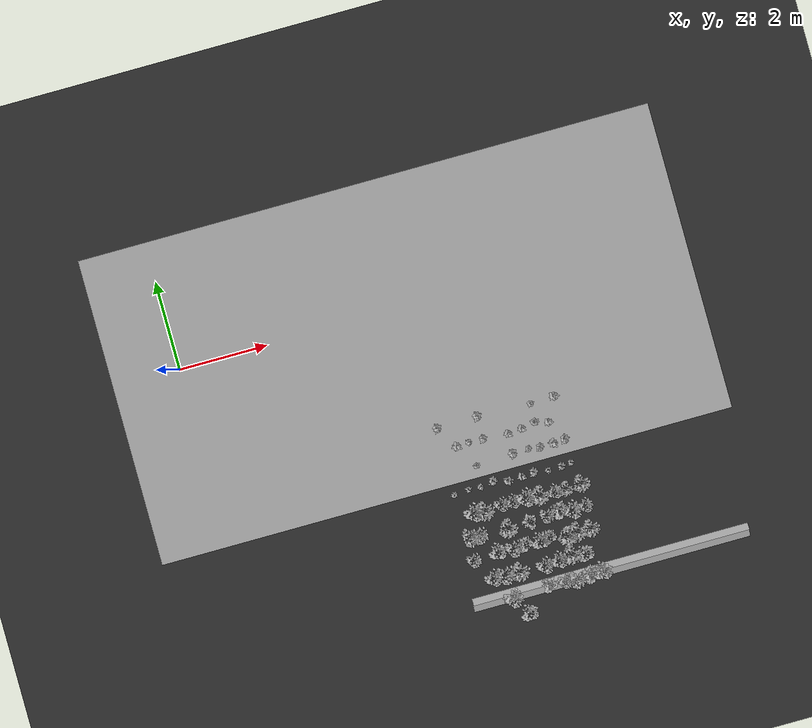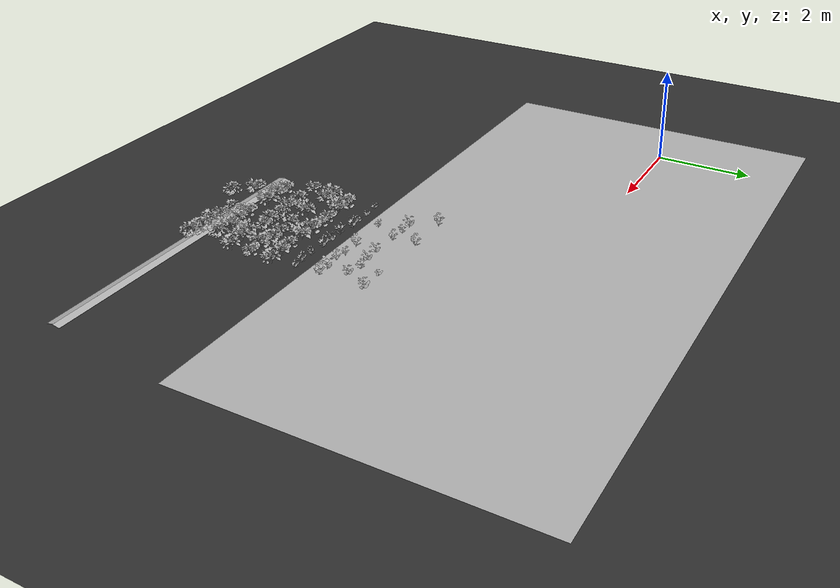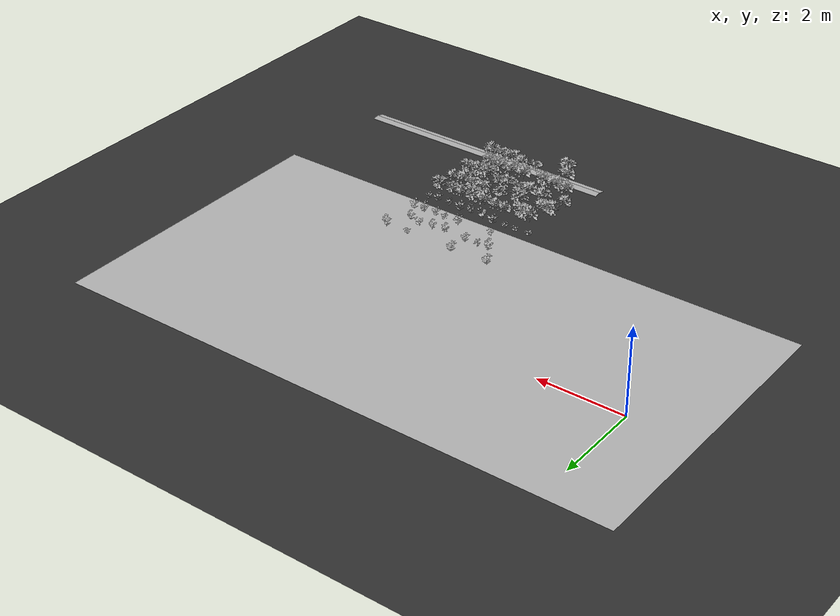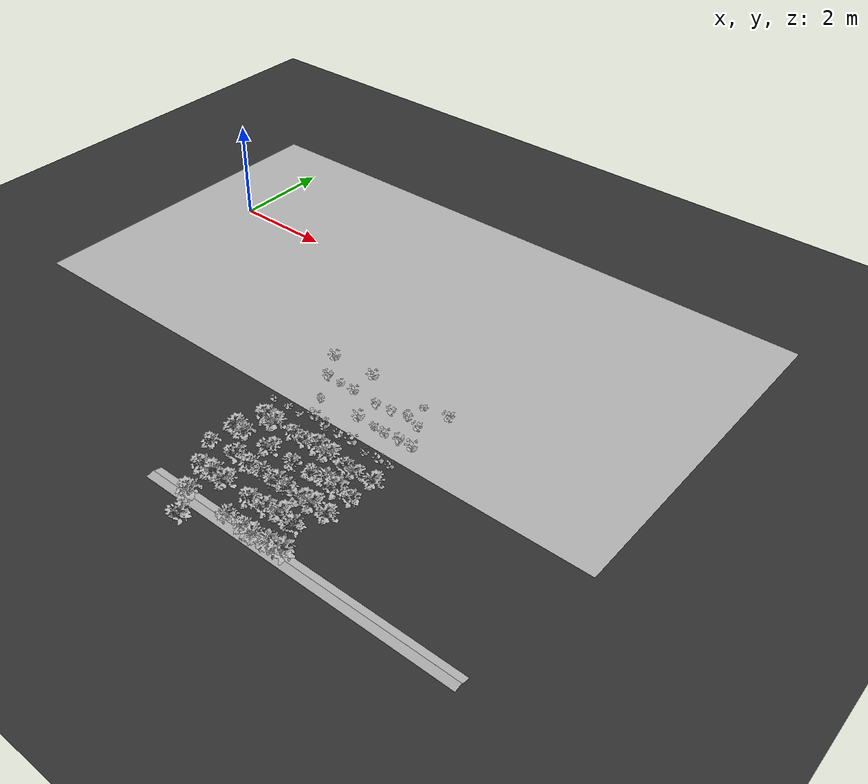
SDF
<sdf version="1.7">
 <world name="default">
  <model name="ground_plane">
   <static>1</static>
   <link name="link">
    <collision name="collision">
     <geometry><plane><normal>0 0 1</normal><size>100 100</size></plane></geometry>
     <surface>
      <contact><collide_bitmask>65535</collide_bitmask></contact>
      <friction><ode><mu>100</mu><mu2>50</mu2></ode></friction>
     </surface>
    </collision>
    <visual name="visual">
     <cast_shadows>0</cast_shadows>
     <geometry><plane><normal>0 0 1</normal><size>100 100</size></plane></geometry>
     <material>
      <ambient>0.2 0.2 0.2 1.0</ambient>
      <diffuse>0.2 0.2 0.2 1.0</diffuse>
      <specular>0.2 0.2 0.2 1.0</specular>
      <emissive>0.2 0.2 0.2 1.0</emissive>
     </material>
    </visual>
   </link>
  </model>
  <model name="ground">
   <pose>5 -0.5 0.01  3.141592654 0 0</pose>
   <static>true</static>
   <link name="body">
    <visual name="visual">
     <cast_shadows>0</cast_shadows>
     <geometry>
      <mesh><uri>file:///home/ifcosta/catkin_ws/src/cnn_line/worlds/models/ground.obj</uri></mesh>
     </geometry>
    </visual>
   </link>
  </model>
  <model name="plt_10017">
   <pose>5.09 -4.28 0.0143 0.0 0.0 -0.89188</pose>
   <static>true</static>
   <link name="body">
    <visual name="visual">
     <geometry>
      <mesh><uri>file:///home/ifcosta/catkin_ws/src/cnn_line/worlds/models/plant10.obj</uri></mesh>
     </geometry>
    </visual>
   </link>
  </model>
  <model name="plt_10018">
   <pose>5.43 -4.24 0.0139 0.0 0.0 2.3928</pose>
   <static>true</static>
   <link name="body">
    <visual name="visual">
     <geometry>
      <mesh><uri>file:///home/ifcosta/catkin_ws/src/cnn_line/worlds/models/plant10.obj</uri></mesh>
     </geometry>
    </visual>
   </link>
  </model>
  <model name="plt_10019">
   <pose>5.7 -4.26 0.0103 0.0 0.0 0.79482</pose>
   <static>true</static>
   <link name="body">
    <visual name="visual">
     <geometry>
      <mesh><uri>file:///home/ifcosta/catkin_ws/src/cnn_line/worlds/models/plant10.obj</uri></mesh>
     </geometry>
    </visual>
   </link>
  </model>
  <model name="plt_10020">
   <pose>5.99 -4.2 0.0155 0.0 0.0 -0.5302</pose>
   <static>true</static>
   <link name="body">
    <visual name="visual">
     <geometry>
      <mesh><uri>file:///home/ifcosta/catkin_ws/src/cnn_line/worlds/models/plant13.obj</uri></mesh>
     </geometry>
    </visual>
   </link>
  </model>
  <model name="plt_20020">
   <pose>5.99 -7.2 0.0155 0.0 0.0 0.67923</pose>
   <static>true</static>
   <link name="body">
    <visual name="visual">
     <geometry>
      <mesh><uri>file:///home/ifcosta/catkin_ws/src/cnn_line/worlds/models/plant21.obj</uri></mesh>
     </geometry>
    </visual>
   </link>
  </model>
  <model name="plt_10021">
   <pose>6.31 -4.28 0.0148 0.0 0.0 -1.7333</pose>
   <static>true</static>
   <link name="body">
    <visual name="visual">
     <geometry>
      <mesh><uri>file:///home/ifcosta/catkin_ws/src/cnn_line/worlds/models/plant13.obj</uri></mesh>
     </geometry>
    </visual>
   </link>
  </model>
  <model name="plt_10022">
   <pose>6.63 -4.27 0.0137 0.0 0.0 1.5613</pose>
   <static>true</static>
   <link name="body">
    <visual name="visual">
     <geometry>
      <mesh><uri>file:///home/ifcosta/catkin_ws/src/cnn_line/worlds/models/plant12.obj</uri></mesh>
     </geometry>
    </visual>
   </link>
  </model>
  <model name="plt_10023">
   <pose>6.9 -4.25 0.0141 0.0 0.0 -0.33479</pose>
   <static>true</static>
   <link name="body">
    <visual name="visual">
     <geometry>
      <mesh><uri>file:///home/ifcosta/catkin_ws/src/cnn_line/worlds/models/plant13.obj</uri></mesh>
     </geometry>
    </visual>
   </link>
  </model>
  <model name="plt_10024">
   <pose>7.23 -4.3 0.0149 0.0 0.0 0.36856</pose>
   <static>true</static>
   <link name="body">
    <visual name="visual">
     <geometry>
      <mesh><uri>file:///home/ifcosta/catkin_ws/src/cnn_line/worlds/models/plant11.obj</uri></mesh>
     </geometry>
    </visual>
   </link>
  </model>
  <model name="plt_10025">
   <pose>7.53 -4.29 0.0139 0.0 0.0 -0.26293</pose>
   <static>true</static>
   <link name="body">
    <visual name="visual">
     <geometry>
      <mesh><uri>file:///home/ifcosta/catkin_ws/src/cnn_line/worlds/models/plant12.obj</uri></mesh>
     </geometry>
    </visual>
   </link>
  </model>
  <model name="plt_10026">
   <pose>7.75 -4.27 0.0156 0.0 0.0 -0.21337</pose>
   <static>true</static>
   <link name="body">
    <visual name="visual">
     <geometry>
      <mesh><uri>file:///home/ifcosta/catkin_ws/src/cnn_line/worlds/models/plant11.obj</uri></mesh>
     </geometry>
    </visual>
   </link>
  </model>
  <model name="plt_10053">
   <pose>5.73 -3.78 0.0159 0.0 0.0 -1.3011</pose>
   <static>true</static>
   <link name="body">
    <visual name="visual">
     <geometry>
      <mesh><uri>file:///home/ifcosta/catkin_ws/src/cnn_line/worlds/models/plant11.obj</uri></mesh>
     </geometry>
    </visual>
   </link>
  </model>
  <model name="plt_20053">
   <pose>5.73 -6.78 0.0159 0.0 0.0 0.48432</pose>
   <static>true</static>
   <link name="body">
    <visual name="visual">
     <geometry>
      <mesh><uri>file:///home/ifcosta/catkin_ws/src/cnn_line/worlds/models/plant22.obj</uri></mesh>
     </geometry>
    </visual>
   </link>
  </model>
  <model name="plt_10056">
   <pose>6.57 -3.73 0.0154 0.0 0.0 0.26239</pose>
   <static>true</static>
   <link name="body">
    <visual name="visual">
     <geometry>
      <mesh><uri>file:///home/ifcosta/catkin_ws/src/cnn_line/worlds/models/plant13.obj</uri></mesh>
     </geometry>
    </visual>
   </link>
  </model>
  <model name="plt_20056">
   <pose>6.57 -6.73 0.0154 0.0 0.0 0.36241</pose>
   <static>true</static>
   <link name="body">
    <visual name="visual">
     <geometry>
      <mesh><uri>file:///home/ifcosta/catkin_ws/src/cnn_line/worlds/models/plant20.obj</uri></mesh>
     </geometry>
    </visual>
   </link>
  </model>
  <model name="plt_10057">
   <pose>6.93 -3.73 0.0172 0.0 0.0 -0.51425</pose>
   <static>true</static>
   <link name="body">
    <visual name="visual">
     <geometry>
      <mesh><uri>file:///home/ifcosta/catkin_ws/src/cnn_line/worlds/models/plant11.obj</uri></mesh>
     </geometry>
    </visual>
   </link>
  </model>
  <model name="plt_20057">
   <pose>6.93 -6.73 0.0172 0.0 0.0 -1.0857</pose>
   <static>true</static>
   <link name="body">
    <visual name="visual">
     <geometry>
      <mesh><uri>file:///home/ifcosta/catkin_ws/src/cnn_line/worlds/models/plant20.obj</uri></mesh>
     </geometry>
    </visual>
   </link>
  </model>
  <model name="plt_10058">
   <pose>7.18 -3.76 0.0165 0.0 0.0 -0.46316</pose>
   <static>true</static>
   <link name="body">
    <visual name="visual">
     <geometry>
      <mesh><uri>file:///home/ifcosta/catkin_ws/src/cnn_line/worlds/models/plant12.obj</uri></mesh>
     </geometry>
    </visual>
   </link>
  </model>
  <model name="plt_20058">
   <pose>7.18 -6.76 0.0165 0.0 0.0 -0.75378</pose>
   <static>true</static>
   <link name="body">
    <visual name="visual">
     <geometry>
      <mesh><uri>file:///home/ifcosta/catkin_ws/src/cnn_line/worlds/models/plant21.obj</uri></mesh>
     </geometry>
    </visual>
   </link>
  </model>
  <model name="plt_10059">
   <pose>7.49 -3.74 0.0131 0.0 0.0 1.0852</pose>
   <static>true</static>
   <link name="body">
    <visual name="visual">
     <geometry>
      <mesh><uri>file:///home/ifcosta/catkin_ws/src/cnn_line/worlds/models/plant13.obj</uri></mesh>
     </geometry>
    </visual>
   </link>
  </model>
  <model name="plt_20059">
   <pose>7.49 -6.74 0.0131 0.0 0.0 1.5801</pose>
   <static>true</static>
   <link name="body">
    <visual name="visual">
     <geometry>
      <mesh><uri>file:///home/ifcosta/catkin_ws/src/cnn_line/worlds/models/plant21.obj</uri></mesh>
     </geometry>
    </visual>
   </link>
  </model>
  <model name="plt_10060">
   <pose>7.75 -3.73 0.013 0.0 0.0 -0.28267</pose>
   <static>true</static>
   <link name="body">
    <visual name="visual">
     <geometry>
      <mesh><uri>file:///home/ifcosta/catkin_ws/src/cnn_line/worlds/models/plant13.obj</uri></mesh>
     </geometry>
    </visual>
   </link>
  </model>
  <model name="plt_20060">
   <pose>7.75 -6.73 0.013 0.0 0.0 1.0998</pose>
   <static>true</static>
   <link name="body">
    <visual name="visual">
     <geometry>
      <mesh><uri>file:///home/ifcosta/catkin_ws/src/cnn_line/worlds/models/plant22.obj</uri></mesh>
     </geometry>
    </visual>
   </link>
  </model>
  <model name="slope_868">
   <pose>8.0 -6.75 -0.005 0.0 0.0 0.0</pose>
   <static>true</static>
   <link name="body">
    <visual name="visual">
     <geometry>
      <mesh><uri>file:///home/ifcosta/catkin_ws/src/cnn_line/worlds/models/slope.obj</uri></mesh>
     </geometry>
    </visual>
   </link>
  </model>
  <model name="slope_968">
   <pose>8.0 -6.75 -0.005 0.0 0.0 3.1416</pose>
   <static>true</static>
   <link name="body">
    <visual name="visual">
     <geometry>
      <mesh><uri>file:///home/ifcosta/catkin_ws/src/cnn_line/worlds/models/slope.obj</uri></mesh>
     </geometry>
    </visual>
   </link>
  </model>
  <model name="plt_10086">
   <pose>5.43 -3.25 0.0145 0.0 0.0 1.4373</pose>
   <static>true</static>
   <link name="body">
    <visual name="visual">
     <geometry>
      <mesh><uri>file:///home/ifcosta/catkin_ws/src/cnn_line/worlds/models/plant13.obj</uri></mesh>
     </geometry>
    </visual>
   </link>
  </model>
  <model name="plt_20086">
   <pose>5.43 -6.25 0.0145 0.0 0.0 0.081571</pose>
   <static>true</static>
   <link name="body">
    <visual name="visual">
     <geometry>
      <mesh><uri>file:///home/ifcosta/catkin_ws/src/cnn_line/worlds/models/plant21.obj</uri></mesh>
     </geometry>
    </visual>
   </link>
  </model>
  <model name="plt_10087">
   <pose>5.71 -3.24 0.0154 0.0 0.0 0.52621</pose>
   <static>true</static>
   <link name="body">
    <visual name="visual">
     <geometry>
      <mesh><uri>file:///home/ifcosta/catkin_ws/src/cnn_line/worlds/models/plant11.obj</uri></mesh>
     </geometry>
    </visual>
   </link>
  </model>
  <model name="plt_20087">
   <pose>5.71 -6.24 0.0154 0.0 0.0 0.16457</pose>
   <static>true</static>
   <link name="body">
    <visual name="visual">
     <geometry>
      <mesh><uri>file:///home/ifcosta/catkin_ws/src/cnn_line/worlds/models/plant22.obj</uri></mesh>
     </geometry>
    </visual>
   </link>
  </model>
  <model name="plt_10088">
   <pose>6.03 -3.25 0.0131 0.0 0.0 -0.16407</pose>
   <static>true</static>
   <link name="body">
    <visual name="visual">
     <geometry>
      <mesh><uri>file:///home/ifcosta/catkin_ws/src/cnn_line/worlds/models/plant12.obj</uri></mesh>
     </geometry>
    </visual>
   </link>
  </model>
  <model name="plt_20088">
   <pose>6.03 -6.25 0.0131 0.0 0.0 -0.51164</pose>
   <static>true</static>
   <link name="body">
    <visual name="visual">
     <geometry>
      <mesh><uri>file:///home/ifcosta/catkin_ws/src/cnn_line/worlds/models/plant22.obj</uri></mesh>
     </geometry>
    </visual>
   </link>
  </model>
  <model name="plt_10090">
   <pose>6.59 -3.28 0.0144 0.0 0.0 1.3888</pose>
   <static>true</static>
   <link name="body">
    <visual name="visual">
     <geometry>
      <mesh><uri>file:///home/ifcosta/catkin_ws/src/cnn_line/worlds/models/plant12.obj</uri></mesh>
     </geometry>
    </visual>
   </link>
  </model>
  <model name="plt_20090">
   <pose>6.59 -6.28 0.0144 0.0 0.0 -0.049474</pose>
   <static>true</static>
   <link name="body">
    <visual name="visual">
     <geometry>
      <mesh><uri>file:///home/ifcosta/catkin_ws/src/cnn_line/worlds/models/plant21.obj</uri></mesh>
     </geometry>
    </visual>
   </link>
  </model>
  <model name="plt_10091">
   <pose>6.91 -3.25 0.0156 0.0 0.0 1.4749</pose>
   <static>true</static>
   <link name="body">
    <visual name="visual">
     <geometry>
      <mesh><uri>file:///home/ifcosta/catkin_ws/src/cnn_line/worlds/models/plant12.obj</uri></mesh>
     </geometry>
    </visual>
   </link>
  </model>
  <model name="plt_20091">
   <pose>6.91 -6.25 0.0156 0.0 0.0 0.26164</pose>
   <static>true</static>
   <link name="body">
    <visual name="visual">
     <geometry>
      <mesh><uri>file:///home/ifcosta/catkin_ws/src/cnn_line/worlds/models/plant21.obj</uri></mesh>
     </geometry>
    </visual>
   </link>
  </model>
  <model name="plt_10092">
   <pose>7.21 -3.19 0.0153 0.0 0.0 -1.3932</pose>
   <static>true</static>
   <link name="body">
    <visual name="visual">
     <geometry>
      <mesh><uri>file:///home/ifcosta/catkin_ws/src/cnn_line/worlds/models/plant12.obj</uri></mesh>
     </geometry>
    </visual>
   </link>
  </model>
  <model name="plt_20092">
   <pose>7.21 -6.19 0.0153 0.0 0.0 -0.70961</pose>
   <static>true</static>
   <link name="body">
    <visual name="visual">
     <geometry>
      <mesh><uri>file:///home/ifcosta/catkin_ws/src/cnn_line/worlds/models/plant22.obj</uri></mesh>
     </geometry>
    </visual>
   </link>
  </model>
  <model name="plt_10093">
   <pose>7.51 -3.27 0.0173 0.0 0.0 1.8168</pose>
   <static>true</static>
   <link name="body">
    <visual name="visual">
     <geometry>
      <mesh><uri>file:///home/ifcosta/catkin_ws/src/cnn_line/worlds/models/plant12.obj</uri></mesh>
     </geometry>
    </visual>
   </link>
  </model>
  <model name="plt_20093">
   <pose>7.51 -6.27 0.0173 0.0 0.0 0.86281</pose>
   <static>true</static>
   <link name="body">
    <visual name="visual">
     <geometry>
      <mesh><uri>file:///home/ifcosta/catkin_ws/src/cnn_line/worlds/models/plant21.obj</uri></mesh>
     </geometry>
    </visual>
   </link>
  </model>
  <model name="plt_10119">
   <pose>5.12 -2.76 0.0183 0.0 0.0 0.079876</pose>
   <static>true</static>
   <link name="body">
    <visual name="visual">
     <geometry>
      <mesh><uri>file:///home/ifcosta/catkin_ws/src/cnn_line/worlds/models/plant13.obj</uri></mesh>
     </geometry>
    </visual>
   </link>
  </model>
  <model name="plt_20119">
   <pose>5.12 -5.76 0.0183 0.0 0.0 -1.1158</pose>
   <static>true</static>
   <link name="body">
    <visual name="visual">
     <geometry>
      <mesh><uri>file:///home/ifcosta/catkin_ws/src/cnn_line/worlds/models/plant20.obj</uri></mesh>
     </geometry>
    </visual>
   </link>
  </model>
  <model name="plt_20121">
   <pose>5.67 -5.72 0.0171 0.0 0.0 0.44338</pose>
   <static>true</static>
   <link name="body">
    <visual name="visual">
     <geometry>
      <mesh><uri>file:///home/ifcosta/catkin_ws/src/cnn_line/worlds/models/plant21.obj</uri></mesh>
     </geometry>
    </visual>
   </link>
  </model>
  <model name="plt_10122">
   <pose>6.03 -2.74 0.0143 0.0 0.0 -0.011805</pose>
   <static>true</static>
   <link name="body">
    <visual name="visual">
     <geometry>
      <mesh><uri>file:///home/ifcosta/catkin_ws/src/cnn_line/worlds/models/plant13.obj</uri></mesh>
     </geometry>
    </visual>
   </link>
  </model>
  <model name="plt_20122">
   <pose>6.03 -5.74 0.0143 0.0 0.0 -0.37671</pose>
   <static>true</static>
   <link name="body">
    <visual name="visual">
     <geometry>
      <mesh><uri>file:///home/ifcosta/catkin_ws/src/cnn_line/worlds/models/plant21.obj</uri></mesh>
     </geometry>
    </visual>
   </link>
  </model>
  <model name="plt_20123">
   <pose>6.3 -5.72 0.0143 0.0 0.0 0.44218</pose>
   <static>true</static>
   <link name="body">
    <visual name="visual">
     <geometry>
      <mesh><uri>file:///home/ifcosta/catkin_ws/src/cnn_line/worlds/models/plant20.obj</uri></mesh>
     </geometry>
    </visual>
   </link>
  </model>
  <model name="plt_20124">
   <pose>6.63 -5.74 0.0152 0.0 0.0 0.66602</pose>
   <static>true</static>
   <link name="body">
    <visual name="visual">
     <geometry>
      <mesh><uri>file:///home/ifcosta/catkin_ws/src/cnn_line/worlds/models/plant21.obj</uri></mesh>
     </geometry>
    </visual>
   </link>
  </model>
  <model name="plt_20125">
   <pose>6.84 -5.71 0.0144 0.0 0.0 0.21995</pose>
   <static>true</static>
   <link name="body">
    <visual name="visual">
     <geometry>
      <mesh><uri>file:///home/ifcosta/catkin_ws/src/cnn_line/worlds/models/plant20.obj</uri></mesh>
     </geometry>
    </visual>
   </link>
  </model>
  <model name="plt_10126">
   <pose>7.24 -2.78 0.0148 0.0 0.0 2.3729</pose>
   <static>true</static>
   <link name="body">
    <visual name="visual">
     <geometry>
      <mesh><uri>file:///home/ifcosta/catkin_ws/src/cnn_line/worlds/models/plant10.obj</uri></mesh>
     </geometry>
    </visual>
   </link>
  </model>
  <model name="plt_20126">
   <pose>7.24 -5.78 0.0148 0.0 0.0 -0.98878</pose>
   <static>true</static>
   <link name="body">
    <visual name="visual">
     <geometry>
      <mesh><uri>file:///home/ifcosta/catkin_ws/src/cnn_line/worlds/models/plant22.obj</uri></mesh>
     </geometry>
    </visual>
   </link>
  </model>
  <model name="plt_20127">
   <pose>7.46 -5.74 0.0118 0.0 0.0 -0.6458</pose>
   <static>true</static>
   <link name="body">
    <visual name="visual">
     <geometry>
      <mesh><uri>file:///home/ifcosta/catkin_ws/src/cnn_line/worlds/models/plant22.obj</uri></mesh>
     </geometry>
    </visual>
   </link>
  </model>
  <model name="plt_10128">
   <pose>7.77 -2.75 0.0169 0.0 0.0 1.9488</pose>
   <static>true</static>
   <link name="body">
    <visual name="visual">
     <geometry>
      <mesh><uri>file:///home/ifcosta/catkin_ws/src/cnn_line/worlds/models/plant13.obj</uri></mesh>
     </geometry>
    </visual>
   </link>
  </model>
  <model name="plt_20128">
   <pose>7.77 -5.75 0.0169 0.0 0.0 -1.1488</pose>
   <static>true</static>
   <link name="body">
    <visual name="visual">
     <geometry>
      <mesh><uri>file:///home/ifcosta/catkin_ws/src/cnn_line/worlds/models/plant21.obj</uri></mesh>
     </geometry>
    </visual>
   </link>
  </model>
  <model name="plt_20153">
   <pose>5.19 -5.24 0.0147 0.0 0.0 -0.12677</pose>
   <static>true</static>
   <link name="body">
    <visual name="visual">
     <geometry>
      <mesh><uri>file:///home/ifcosta/catkin_ws/src/cnn_line/worlds/models/plant22.obj</uri></mesh>
     </geometry>
    </visual>
   </link>
  </model>
  <model name="plt_20154">
   <pose>5.38 -5.26 0.0161 0.0 0.0 -0.38257</pose>
   <static>true</static>
   <link name="body">
    <visual name="visual">
     <geometry>
      <mesh><uri>file:///home/ifcosta/catkin_ws/src/cnn_line/worlds/models/plant21.obj</uri></mesh>
     </geometry>
    </visual>
   </link>
  </model>
  <model name="plt_20156">
   <pose>6.03 -5.27 0.0135 0.0 0.0 -0.77716</pose>
   <static>true</static>
   <link name="body">
    <visual name="visual">
     <geometry>
      <mesh><uri>file:///home/ifcosta/catkin_ws/src/cnn_line/worlds/models/plant22.obj</uri></mesh>
     </geometry>
    </visual>
   </link>
  </model>
  <model name="plt_20158">
   <pose>6.53 -5.28 0.0191 0.0 0.0 1.2225</pose>
   <static>true</static>
   <link name="body">
    <visual name="visual">
     <geometry>
      <mesh><uri>file:///home/ifcosta/catkin_ws/src/cnn_line/worlds/models/plant20.obj</uri></mesh>
     </geometry>
    </visual>
   </link>
  </model>
  <model name="plt_20159">
   <pose>6.92 -5.24 0.0172 0.0 0.0 -1.4394</pose>
   <static>true</static>
   <link name="body">
    <visual name="visual">
     <geometry>
      <mesh><uri>file:///home/ifcosta/catkin_ws/src/cnn_line/worlds/models/plant20.obj</uri></mesh>
     </geometry>
    </visual>
   </link>
  </model>
  <model name="plt_20160">
   <pose>7.22 -5.21 0.012 0.0 0.0 1.3364</pose>
   <static>true</static>
   <link name="body">
    <visual name="visual">
     <geometry>
      <mesh><uri>file:///home/ifcosta/catkin_ws/src/cnn_line/worlds/models/plant21.obj</uri></mesh>
     </geometry>
    </visual>
   </link>
  </model>
  <model name="plt_20161">
   <pose>7.48 -5.26 0.013 0.0 0.0 0.73235</pose>
   <static>true</static>
   <link name="body">
    <visual name="visual">
     <geometry>
      <mesh><uri>file:///home/ifcosta/catkin_ws/src/cnn_line/worlds/models/plant22.obj</uri></mesh>
     </geometry>
    </visual>
   </link>
  </model>
  <model name="plt_20162">
   <pose>7.79 -5.25 0.0152 0.0 0.0 -0.69813</pose>
   <static>true</static>
   <link name="body">
    <visual name="visual">
     <geometry>
      <mesh><uri>file:///home/ifcosta/catkin_ws/src/cnn_line/worlds/models/plant20.obj</uri></mesh>
     </geometry>
    </visual>
   </link>
  </model>
  <model name="plt_20188">
   <pose>5.39 -4.75 0.0161 0.0 0.0 0.72767</pose>
   <static>true</static>
   <link name="body">
    <visual name="visual">
     <geometry>
      <mesh><uri>file:///home/ifcosta/catkin_ws/src/cnn_line/worlds/models/plant22.obj</uri></mesh>
     </geometry>
    </visual>
   </link>
  </model>
  <model name="plt_20189">
   <pose>5.64 -4.77 0.0178 0.0 0.0 -0.43351</pose>
   <static>true</static>
   <link name="body">
    <visual name="visual">
     <geometry>
      <mesh><uri>file:///home/ifcosta/catkin_ws/src/cnn_line/worlds/models/plant22.obj</uri></mesh>
     </geometry>
    </visual>
   </link>
  </model>
  <model name="plt_20190">
   <pose>6.03 -4.74 0.0179 0.0 0.0 -0.94175</pose>
   <static>true</static>
   <link name="body">
    <visual name="visual">
     <geometry>
      <mesh><uri>file:///home/ifcosta/catkin_ws/src/cnn_line/worlds/models/plant20.obj</uri></mesh>
     </geometry>
    </visual>
   </link>
  </model>
  <model name="plt_20191">
   <pose>6.28 -4.75 0.0162 0.0 0.0 -0.5845</pose>
   <static>true</static>
   <link name="body">
    <visual name="visual">
     <geometry>
      <mesh><uri>file:///home/ifcosta/catkin_ws/src/cnn_line/worlds/models/plant20.obj</uri></mesh>
     </geometry>
    </visual>
   </link>
  </model>
  <model name="plt_20192">
   <pose>6.57 -4.73 0.0154 0.0 0.0 0.64475</pose>
   <static>true</static>
   <link name="body">
    <visual name="visual">
     <geometry>
      <mesh><uri>file:///home/ifcosta/catkin_ws/src/cnn_line/worlds/models/plant22.obj</uri></mesh>
     </geometry>
    </visual>
   </link>
  </model>
  <model name="plt_20193">
   <pose>6.88 -4.76 0.0156 0.0 0.0 -0.83859</pose>
   <static>true</static>
   <link name="body">
    <visual name="visual">
     <geometry>
      <mesh><uri>file:///home/ifcosta/catkin_ws/src/cnn_line/worlds/models/plant22.obj</uri></mesh>
     </geometry>
    </visual>
   </link>
  </model>
  <model name="plt_20194">
   <pose>7.22 -4.78 0.0151 0.0 0.0 -0.5234</pose>
   <static>true</static>
   <link name="body">
    <visual name="visual">
     <geometry>
      <mesh><uri>file:///home/ifcosta/catkin_ws/src/cnn_line/worlds/models/plant20.obj</uri></mesh>
     </geometry>
    </visual>
   </link>
  </model>
  <model name="plt_20195">
   <pose>7.47 -4.78 0.0141 0.0 0.0 -2.3336</pose>
   <static>true</static>
   <link name="body">
    <visual name="visual">
     <geometry>
      <mesh><uri>file:///home/ifcosta/catkin_ws/src/cnn_line/worlds/models/plant20.obj</uri></mesh>
     </geometry>
    </visual>
   </link>
  </model>
  <model name="plt_20196">
   <pose>7.83 -4.75 0.0165 0.0 0.0 -1.1985</pose>
   <static>true</static>
   <link name="body">
    <visual name="visual">
     <geometry>
      <mesh><uri>file:///home/ifcosta/catkin_ws/src/cnn_line/worlds/models/plant21.obj</uri></mesh>
     </geometry>
    </visual>
   </link>
  </model>
 </world>
</sdf>
